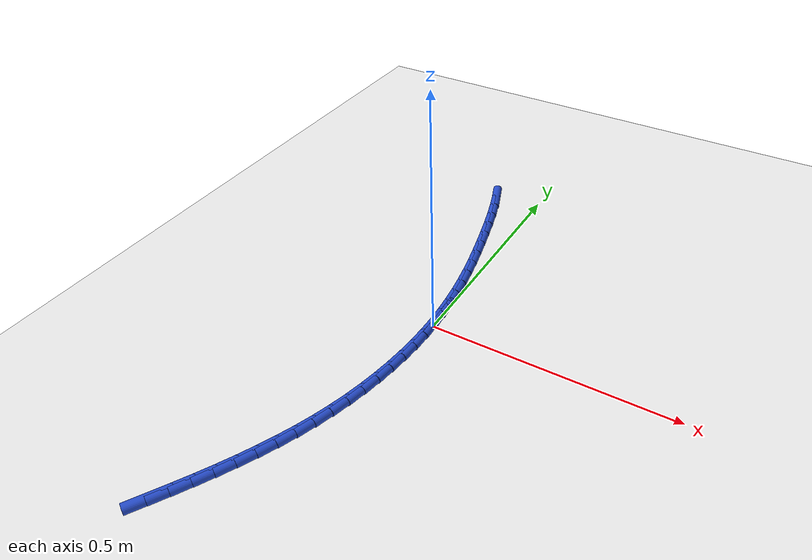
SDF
<sdf version="1.6">
 <world name="default">
  <model name="ground_plane">
   <static>1</static>
   <link name="link">
    <collision name="collision">
     <geometry><plane><normal>0 0 1</normal><size>100 100</size></plane></geometry>
     <surface><friction><ode><mu>100</mu><mu2>50</mu2></ode></friction></surface>
    </collision>
    <visual name="visual">
     <cast_shadows>0</cast_shadows>
     <geometry><plane><normal>0 0 1</normal><size>100 100</size></plane></geometry>
     <material>
      <script><uri>file://media/materials/scripts/gazebo.material</uri><name>Gazebo/WhiteGlow</name></script>
     </material>
    </visual>
   </link>
  </model>
  <model name="line">
   <link name="link_0">
    <pose>-3.469446951953614e-17 7.632783294297951e-17 0.01 0 1.57 -1.5332904688426268</pose>
    <collision name="collision">
     <geometry><cylinder><radius>0.01</radius><length>0.08</length></cylinder></geometry>
    </collision>
    <visual name="visual">
     <material>
      <script><name>Gazebo/Blue</name><uri>file://media/materials/scripts/gazebo.material</uri></script>
     </material>
     <geometry><cylinder><radius>0.01</radius><length>0.08</length></cylinder></geometry>
    </visual>
   </link>
   <link name="link_1">
    <pose>-0.0013126352943905112 0.034981728675266506 0.01 0 1.57 -1.4955436835216058</pose>
    <collision name="collision">
     <geometry><cylinder><radius>0.01</radius><length>0.08</length></cylinder></geometry>
    </collision>
    <visual name="visual">
     <material>
      <script><name>Gazebo/Blue</name><uri>file://media/materials/scripts/gazebo.material</uri></script>
     </material>
     <geometry><cylinder><radius>0.01</radius><length>0.08</length></cylinder></geometry>
    </visual>
   </link>
   <link name="link_2">
    <pose>-0.0039356135919354366 0.06977153856625622 0.01 0 1.57 -1.4607083003388548</pose>
    <collision name="collision">
     <geometry><cylinder><radius>0.01</radius><length>0.08</length></cylinder></geometry>
    </collision>
    <visual name="visual">
     <material>
      <script><name>Gazebo/Blue</name><uri>file://media/materials/scripts/gazebo.material</uri></script>
     </material>
     <geometry><cylinder><radius>0.01</radius><length>0.08</length></cylinder></geometry>
    </visual>
   </link>
   <link name="link_3">
    <pose>-0.0077704655635502376 0.10446511571541536 0.01 0 1.57 -1.429122179175878</pose>
    <collision name="collision">
     <geometry><cylinder><radius>0.01</radius><length>0.08</length></cylinder></geometry>
    </collision>
    <visual name="visual">
     <material>
      <script><name>Gazebo/Blue</name><uri>file://media/materials/scripts/gazebo.material</uri></script>
     </material>
     <geometry><cylinder><radius>0.01</radius><length>0.08</length></cylinder></geometry>
    </visual>
   </link>
   <link name="link_4">
    <pose>-0.012718721880150361 0.1391581461651901 0.01 0 1.57 -1.4010318733163856</pose>
    <collision name="collision">
     <geometry><cylinder><radius>0.01</radius><length>0.08</length></cylinder></geometry>
    </collision>
    <visual name="visual">
     <material>
      <script><name>Gazebo/Blue</name><uri>file://media/materials/scripts/gazebo.material</uri></script>
     </material>
     <geometry><cylinder><radius>0.01</radius><length>0.08</length></cylinder></geometry>
    </visual>
   </link>
   <link name="link_5">
    <pose>-0.01868191321265123 0.17394631595802645 0.01 0 1.57 -1.3765954267108529</pose>
    <collision name="collision">
     <geometry><cylinder><radius>0.01</radius><length>0.08</length></cylinder></geometry>
    </collision>
    <visual name="visual">
     <material>
      <script><name>Gazebo/Blue</name><uri>file://media/materials/scripts/gazebo.material</uri></script>
     </material>
     <geometry><cylinder><radius>0.01</radius><length>0.08</length></cylinder></geometry>
    </visual>
   </link>
   <link name="link_6">
    <pose>-0.025561570231968294 0.20892531113637067 0.01 0 1.57 -1.3558899525926105</pose>
    <collision name="collision">
     <geometry><cylinder><radius>0.01</radius><length>0.08</length></cylinder></geometry>
    </collision>
    <visual name="visual">
     <material>
      <script><name>Gazebo/Blue</name><uri>file://media/materials/scripts/gazebo.material</uri></script>
     </material>
     <geometry><cylinder><radius>0.01</radius><length>0.08</length></cylinder></geometry>
    </visual>
   </link>
   <link name="link_7">
    <pose>-0.033259223609016994 0.24419081774266885 0.01 0 1.57 -1.3389220635359205</pose>
    <collision name="collision">
     <geometry><cylinder><radius>0.01</radius><length>0.08</length></cylinder></geometry>
    </collision>
    <visual name="visual">
     <material>
      <script><name>Gazebo/Blue</name><uri>file://media/materials/scripts/gazebo.material</uri></script>
     </material>
     <geometry><cylinder><radius>0.01</radius><length>0.08</length></cylinder></geometry>
    </visual>
   </link>
   <link name="link_8">
    <pose>-0.041676404014712745 0.2798385218193671 0.01 0 1.57 -1.3256276389955242</pose>
    <collision name="collision">
     <geometry><cylinder><radius>0.01</radius><length>0.08</length></cylinder></geometry>
    </collision>
    <visual name="visual">
     <material>
      <script><name>Gazebo/Blue</name><uri>file://media/materials/scripts/gazebo.material</uri></script>
     </material>
     <geometry><cylinder><radius>0.01</radius><length>0.08</length></cylinder></geometry>
    </visual>
   </link>
   <link name="link_9">
    <pose>-0.05071496901925 0.315963605657907 0.01 0 1.57 -1.313118206622053</pose>
    <collision name="collision">
     <geometry><cylinder><radius>0.01</radius><length>0.08</length></cylinder></geometry>
    </collision>
    <visual name="visual">
     <material>
      <script><name>Gazebo/Blue</name><uri>file://media/materials/scripts/gazebo.material</uri></script>
     </material>
     <geometry><cylinder><radius>0.01</radius><length>0.08</length></cylinder></geometry>
    </visual>
   </link>
   <link name="link_10">
    <pose>-0.060354562354739294 0.35254138326086565 0.01 0 1.57 -1.2949289522902876</pose>
    <collision name="collision">
     <geometry><cylinder><radius>0.01</radius><length>0.08</length></cylinder></geometry>
    </collision>
    <visual name="visual">
     <material>
      <script><name>Gazebo/Blue</name><uri>file://media/materials/scripts/gazebo.material</uri></script>
     </material>
     <geometry><cylinder><radius>0.01</radius><length>0.08</length></cylinder></geometry>
    </visual>
   </link>
   <link name="link_11">
    <pose>-0.07075274260871864 0.38927300226551403 0.01 0 1.57 -1.2699642282858752</pose>
    <collision name="collision">
     <geometry><cylinder><radius>0.01</radius><length>0.08</length></cylinder></geometry>
    </collision>
    <visual name="visual">
     <material>
      <script><name>Gazebo/Blue</name><uri>file://media/materials/scripts/gazebo.material</uri></script>
     </material>
     <geometry><cylinder><radius>0.01</radius><length>0.08</length></cylinder></geometry>
    </visual>
   </link>
   <link name="link_12">
    <pose>-0.08209183255353676 0.4258214487597515 0.01 0 1.57 -1.2377750774524687</pose>
    <collision name="collision">
     <geometry><cylinder><radius>0.01</radius><length>0.08</length></cylinder></geometry>
    </collision>
    <visual name="visual">
     <material>
      <script><name>Gazebo/Blue</name><uri>file://media/materials/scripts/gazebo.material</uri></script>
     </material>
     <geometry><cylinder><radius>0.01</radius><length>0.08</length></cylinder></geometry>
    </visual>
   </link>
   <link name="link_13">
    <pose>-0.09455415496154239 0.4618497088314772 0.01 0 1.57 -1.197678199481396</pose>
    <collision name="collision">
     <geometry><cylinder><radius>0.01</radius><length>0.08</length></cylinder></geometry>
    </collision>
    <visual name="visual">
     <material>
      <script><name>Gazebo/Blue</name><uri>file://media/materials/scripts/gazebo.material</uri></script>
     </material>
     <geometry><cylinder><radius>0.01</radius><length>0.08</length></cylinder></geometry>
    </visual>
   </link>
   <link name="link_183">
    <pose>-0.1794080120001196 -0.5691751634315242 0.01 0 1.57 1.0238637423224572</pose>
    <collision name="collision">
     <geometry><cylinder><radius>0.01</radius><length>0.08</length></cylinder></geometry>
    </collision>
    <visual name="visual">
     <material>
      <script><name>Gazebo/Blue</name><uri>file://media/materials/scripts/gazebo.material</uri></script>
     </material>
     <geometry><cylinder><radius>0.01</radius><length>0.08</length></cylinder></geometry>
    </visual>
   </link>
   <link name="link_184">
    <pose>-0.16092707499329617 -0.538823448142143 0.01 0 1.57 1.0388549611596054</pose>
    <collision name="collision">
     <geometry><cylinder><radius>0.01</radius><length>0.08</length></cylinder></geometry>
    </collision>
    <visual name="visual">
     <material>
      <script><name>Gazebo/Blue</name><uri>file://media/materials/scripts/gazebo.material</uri></script>
     </material>
     <geometry><cylinder><radius>0.01</radius><length>0.08</length></cylinder></geometry>
    </visual>
   </link>
   <link name="link_185">
    <pose>-0.14288173792006137 -0.5081616230405179 0.01 0 1.57 1.0576066050412316</pose>
    <collision name="collision">
     <geometry><cylinder><radius>0.01</radius><length>0.08</length></cylinder></geometry>
    </collision>
    <visual name="visual">
     <material>
      <script><name>Gazebo/Blue</name><uri>file://media/materials/scripts/gazebo.material</uri></script>
     </material>
     <geometry><cylinder><radius>0.01</radius><length>0.08</length></cylinder></geometry>
    </visual>
   </link>
   <link name="link_186">
    <pose>-0.1254050446412114 -0.4771500517960834 0.01 0 1.57 1.080149237408768</pose>
    <collision name="collision">
     <geometry><cylinder><radius>0.01</radius><length>0.08</length></cylinder></geometry>
    </collision>
    <visual name="visual">
     <material>
      <script><name>Gazebo/Blue</name><uri>file://media/materials/scripts/gazebo.material</uri></script>
     </material>
     <geometry><cylinder><radius>0.01</radius><length>0.08</length></cylinder></geometry>
    </visual>
   </link>
   <link name="link_187">
    <pose>-0.10863003901754241 -0.4457490980782735 0.01 0 1.57 1.1065133465932764</pose>
    <collision name="collision">
     <geometry><cylinder><radius>0.01</radius><length>0.08</length></cylinder></geometry>
    </collision>
    <visual name="visual">
     <material>
      <script><name>Gazebo/Blue</name><uri>file://media/materials/scripts/gazebo.material</uri></script>
     </material>
     <geometry><cylinder><radius>0.01</radius><length>0.08</length></cylinder></geometry>
    </visual>
   </link>
   <link name="link_188">
    <pose>-0.09268976490985051 -0.4139191255565226 0.01 0 1.57 1.1367195534845524</pose>
    <collision name="collision">
     <geometry><cylinder><radius>0.01</radius><length>0.08</length></cylinder></geometry>
    </collision>
    <visual name="visual">
     <material>
      <script><name>Gazebo/Blue</name><uri>file://media/materials/scripts/gazebo.material</uri></script>
     </material>
     <geometry><cylinder><radius>0.01</radius><length>0.08</length></cylinder></geometry>
    </visual>
   </link>
   <link name="link_189">
    <pose>-0.07771726617893186 -0.3816204979002649 0.01 0 1.57 1.1707669368516467</pose>
    <collision name="collision">
     <geometry><cylinder><radius>0.01</radius><length>0.08</length></cylinder></geometry>
    </collision>
    <visual name="visual">
     <material>
      <script><name>Gazebo/Blue</name><uri>file://media/materials/scripts/gazebo.material</uri></script>
     </material>
     <geometry><cylinder><radius>0.01</radius><length>0.08</length></cylinder></geometry>
    </visual>
   </link>
   <link name="link_190">
    <pose>-0.06384558668558257 -0.3488135787789349 0.01 0 1.57 1.2086196554795758</pose>
    <collision name="collision">
     <geometry><cylinder><radius>0.01</radius><length>0.08</length></cylinder></geometry>
    </collision>
    <visual name="visual">
     <material>
      <script><name>Gazebo/Blue</name><uri>file://media/materials/scripts/gazebo.material</uri></script>
     </material>
     <geometry><cylinder><radius>0.01</radius><length>0.08</length></cylinder></geometry>
    </visual>
   </link>
   <link name="link_191">
    <pose>-0.05120777029059878 -0.3154587318619663 0.01 0 1.57 1.2497766539099002</pose>
    <collision name="collision">
     <geometry><cylinder><radius>0.01</radius><length>0.08</length></cylinder></geometry>
    </collision>
    <visual name="visual">
     <material>
      <script><name>Gazebo/Blue</name><uri>file://media/materials/scripts/gazebo.material</uri></script>
     </material>
     <geometry><cylinder><radius>0.01</radius><length>0.08</length></cylinder></geometry>
    </visual>
   </link>
   <link name="link_192">
    <pose>-0.03992529210824353 -0.28152865454688103 0.01 0 1.57 1.2912185154245819</pose>
    <collision name="collision">
     <geometry><cylinder><radius>0.01</radius><length>0.08</length></cylinder></geometry>
    </collision>
    <visual name="visual">
     <material>
      <script><name>Gazebo/Blue</name><uri>file://media/materials/scripts/gazebo.material</uri></script>
     </material>
     <geometry><cylinder><radius>0.01</radius><length>0.08</length></cylinder></geometry>
    </visual>
   </link>
   <link name="link_193">
    <pose>-0.030036513195818057 -0.2470846541921612 0.01 0 1.57 1.3318047476753414</pose>
    <collision name="collision">
     <geometry><cylinder><radius>0.01</radius><length>0.08</length></cylinder></geometry>
    </collision>
    <visual name="visual">
     <material>
      <script><name>Gazebo/Blue</name><uri>file://media/materials/scripts/gazebo.material</uri></script>
     </material>
     <geometry><cylinder><radius>0.01</radius><length>0.08</length></cylinder></geometry>
    </visual>
   </link>
   <link name="link_194">
    <pose>-0.021543456310054995 -0.21222677932129608 0.01 0 1.57 1.3717293787689067</pose>
    <collision name="collision">
     <geometry><cylinder><radius>0.01</radius><length>0.08</length></cylinder></geometry>
    </collision>
    <visual name="visual">
     <material>
      <script><name>Gazebo/Blue</name><uri>file://media/materials/scripts/gazebo.material</uri></script>
     </material>
     <geometry><cylinder><radius>0.01</radius><length>0.08</length></cylinder></geometry>
    </visual>
   </link>
   <link name="link_195">
    <pose>-0.014447991494608143 -0.17705524126898115 0.01 0 1.57 1.4111931922464513</pose>
    <collision name="collision">
     <geometry><cylinder><radius>0.01</radius><length>0.08</length></cylinder></geometry>
    </collision>
    <visual name="visual">
     <material>
      <script><name>Gazebo/Blue</name><uri>file://media/materials/scripts/gazebo.material</uri></script>
     </material>
     <geometry><cylinder><radius>0.01</radius><length>0.08</length></cylinder></geometry>
    </visual>
   </link>
   <link name="link_196">
    <pose>-0.008751988793131299 -0.1416702513699119 0.01 0 1.57 1.4503987974587604</pose>
    <collision name="collision">
     <geometry><cylinder><radius>0.01</radius><length>0.08</length></cylinder></geometry>
    </collision>
    <visual name="visual">
     <material>
      <script><name>Gazebo/Blue</name><uri>file://media/materials/scripts/gazebo.material</uri></script>
     </material>
     <geometry><cylinder><radius>0.01</radius><length>0.08</length></cylinder></geometry>
    </visual>
   </link>
   <link name="link_197">
    <pose>-0.004457318249278272 -0.10617202095878368 0.01 0 1.57 1.489551570634554</pose>
    <collision name="collision">
     <geometry><cylinder><radius>0.01</radius><length>0.08</length></cylinder></geometry>
    </collision>
    <visual name="visual">
     <material>
      <script><name>Gazebo/Blue</name><uri>file://media/materials/scripts/gazebo.material</uri></script>
     </material>
     <geometry><cylinder><radius>0.01</radius><length>0.08</length></cylinder></geometry>
    </visual>
   </link>
   <link name="link_198">
    <pose>-0.0015658499067028459 -0.07066076137029197 0.01 0 1.57 1.5288608753538762</pose>
    <collision name="collision">
     <geometry><cylinder><radius>0.01</radius><length>0.08</length></cylinder></geometry>
    </collision>
    <visual name="visual">
     <material>
      <script><name>Gazebo/Blue</name><uri>file://media/materials/scripts/gazebo.material</uri></script>
     </material>
     <geometry><cylinder><radius>0.01</radius><length>0.08</length></cylinder></geometry>
    </visual>
   </link>
   <link name="link_199">
    <pose>-7.945380905883224e-05 -0.0352366839391322 0.01 0 1.57 1.5685414700513323</pose>
    <collision name="collision">
     <geometry><cylinder><radius>0.01</radius><length>0.08</length></cylinder></geometry>
    </collision>
    <visual name="visual">
     <material>
      <script><name>Gazebo/Blue</name><uri>file://media/materials/scripts/gazebo.material</uri></script>
     </material>
     <geometry><cylinder><radius>0.01</radius><length>0.08</length></cylinder></geometry>
    </visual>
   </link>
   <link name="link_200">
    <pose>-3.122502256758253e-17 1.5265566588595902e-16 0.01 0 1.57 -1.5327776435769755</pose>
    <collision name="collision">
     <geometry><cylinder><radius>0.01</radius><length>0.08</length></cylinder></geometry>
    </collision>
    <visual name="visual">
     <material>
      <script><name>Gazebo/Blue</name><uri>file://media/materials/scripts/gazebo.material</uri></script>
     </material>
     <geometry><cylinder><radius>0.01</radius><length>0.08</length></cylinder></geometry>
    </visual>
   </link>
   <link name="link_201">
    <pose>-0.0013293585231802848 0.03494907911241045 0.01 0 1.57 -1.5327776435769758</pose>
    <collision name="collision">
     <geometry><cylinder><radius>0.01</radius><length>0.08</length></cylinder></geometry>
    </collision>
    <visual name="visual">
     <material>
      <script><name>Gazebo/Blue</name><uri>file://media/materials/scripts/gazebo.material</uri></script>
     </material>
     <geometry><cylinder><radius>0.01</radius><length>0.08</length></cylinder></geometry>
    </visual>
   </link>
  </model>
 </world>
</sdf>
